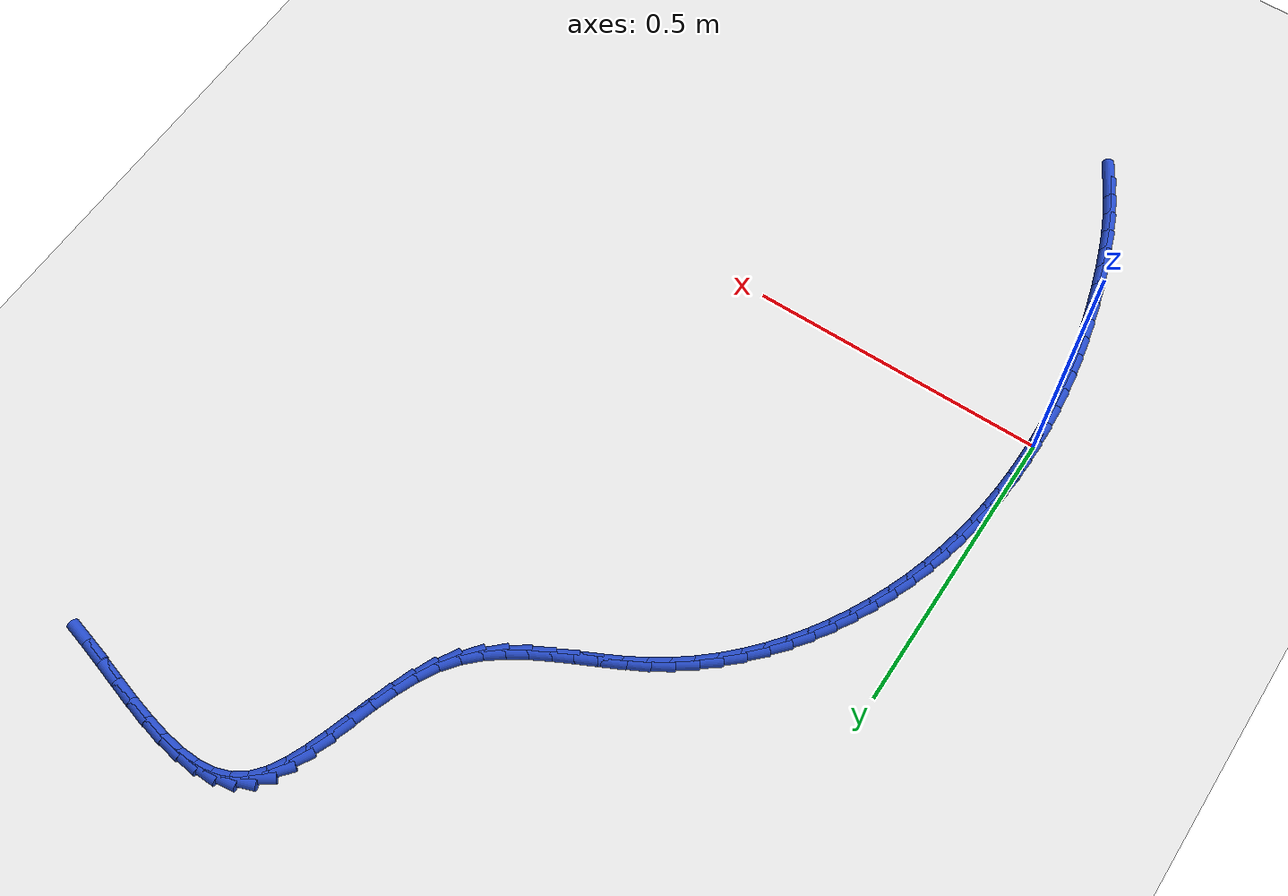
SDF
<sdf version="1.6">
 <world name="default">
  <model name="ground_plane">
   <static>1</static>
   <link name="link">
    <collision name="collision">
     <geometry><plane><normal>0 0 1</normal><size>100 100</size></plane></geometry>
     <surface><friction><ode><mu>100</mu><mu2>50</mu2></ode></friction></surface>
    </collision>
    <visual name="visual">
     <cast_shadows>0</cast_shadows>
     <geometry><plane><normal>0 0 1</normal><size>100 100</size></plane></geometry>
     <material>
      <script><uri>file://media/materials/scripts/gazebo.material</uri><name>Gazebo/WhiteGlow</name></script>
     </material>
    </visual>
   </link>
  </model>
  <model name="line">
   <link name="link_0">
    <pose>-4.336808689942018e-18 -1.1796119636642288e-16 0.01 0 1.57 1.568800639922885</pose>
    <collision name="collision">
     <geometry><cylinder><radius>0.01</radius><length>0.08</length></cylinder></geometry>
    </collision>
    <visual name="visual">
     <material>
      <script><name>Gazebo/Blue</name><uri>file://media/materials/scripts/gazebo.material</uri></script>
     </material>
     <geometry><cylinder><radius>0.01</radius><length>0.08</length></cylinder></geometry>
    </visual>
   </link>
   <link name="link_1">
    <pose>6.942134410869392e-05 0.034785643438998634 0.01 0 1.57 1.5328198648100113</pose>
    <collision name="collision">
     <geometry><cylinder><radius>0.01</radius><length>0.08</length></cylinder></geometry>
    </collision>
    <visual name="visual">
     <material>
      <script><name>Gazebo/Blue</name><uri>file://media/materials/scripts/gazebo.material</uri></script>
     </material>
     <geometry><cylinder><radius>0.01</radius><length>0.08</length></cylinder></geometry>
    </visual>
   </link>
   <link name="link_2">
    <pose>0.0013932022842789277 0.06962681660383616 0.01 0 1.57 1.4957371810992248</pose>
    <collision name="collision">
     <geometry><cylinder><radius>0.01</radius><length>0.08</length></cylinder></geometry>
    </collision>
    <visual name="visual">
     <material>
      <script><name>Gazebo/Blue</name><uri>file://media/materials/scripts/gazebo.material</uri></script>
     </material>
     <geometry><cylinder><radius>0.01</radius><length>0.08</length></cylinder></geometry>
    </visual>
   </link>
   <link name="link_3">
    <pose>0.004012831644318548 0.10446211791155681 0.01 0 1.57 1.4574734331015686</pose>
    <collision name="collision">
     <geometry><cylinder><radius>0.01</radius><length>0.08</length></cylinder></geometry>
    </collision>
    <visual name="visual">
     <material>
      <script><name>Gazebo/Blue</name><uri>file://media/materials/scripts/gazebo.material</uri></script>
     </material>
     <geometry><cylinder><radius>0.01</radius><length>0.08</length></cylinder></geometry>
    </visual>
   </link>
   <link name="link_4">
    <pose>0.007969798248035407 0.13923014577920503 0.01 0 1.57 1.4179591411402652</pose>
    <collision name="collision">
     <geometry><cylinder><radius>0.01</radius><length>0.08</length></cylinder></geometry>
    </collision>
    <visual name="visual">
     <material>
      <script><name>Gazebo/Blue</name><uri>file://media/materials/scripts/gazebo.material</uri></script>
     </material>
     <geometry><cylinder><radius>0.01</radius><length>0.08</length></cylinder></geometry>
    </visual>
   </link>
   <link name="link_5">
    <pose>0.013305590919237355 0.17386949862382514 0.01 0 1.57 1.3771366664826474</pose>
    <collision name="collision">
     <geometry><cylinder><radius>0.01</radius><length>0.08</length></cylinder></geometry>
    </collision>
    <visual name="visual">
     <material>
      <script><name>Gazebo/Blue</name><uri>file://media/materials/scripts/gazebo.material</uri></script>
     </material>
     <geometry><cylinder><radius>0.01</radius><length>0.08</length></cylinder></geometry>
    </visual>
   </link>
   <link name="link_6">
    <pose>0.020061698481732258 0.20831877486246167 0.01 0 1.57 1.3349627168937246</pose>
    <collision name="collision">
     <geometry><cylinder><radius>0.01</radius><length>0.08</length></cylinder></geometry>
    </collision>
    <visual name="visual">
     <material>
      <script><name>Gazebo/Blue</name><uri>file://media/materials/scripts/gazebo.material</uri></script>
     </material>
     <geometry><cylinder><radius>0.01</radius><length>0.08</length></cylinder></geometry>
    </visual>
   </link>
   <link name="link_7">
    <pose>0.02827960975932797 0.24251657291215897 0.01 0 1.57 1.2914111258414969</pose>
    <collision name="collision">
     <geometry><cylinder><radius>0.01</radius><length>0.08</length></cylinder></geometry>
    </collision>
    <visual name="visual">
     <material>
      <script><name>Gazebo/Blue</name><uri>file://media/materials/scripts/gazebo.material</uri></script>
     </material>
     <geometry><cylinder><radius>0.01</radius><length>0.08</length></cylinder></geometry>
    </visual>
   </link>
   <link name="link_8">
    <pose>0.03800081357583232 0.27640149118996127 0.01 0 1.57 1.2464757983543455</pose>
    <collision name="collision">
     <geometry><cylinder><radius>0.01</radius><length>0.08</length></cylinder></geometry>
    </collision>
    <visual name="visual">
     <material>
      <script><name>Gazebo/Blue</name><uri>file://media/materials/scripts/gazebo.material</uri></script>
     </material>
     <geometry><cylinder><radius>0.01</radius><length>0.08</length></cylinder></geometry>
    </visual>
   </link>
   <link name="link_9">
    <pose>0.04926679858608168 0.30991212789948186 0.01 0 1.57 1.2002997846877717</pose>
    <collision name="collision">
     <geometry><cylinder><radius>0.01</radius><length>0.08</length></cylinder></geometry>
    </collision>
    <visual name="visual">
     <material>
      <script><name>Gazebo/Blue</name><uri>file://media/materials/scripts/gazebo.material</uri></script>
     </material>
     <geometry><cylinder><radius>0.01</radius><length>0.08</length></cylinder></geometry>
    </visual>
   </link>
   <link name="link_10">
    <pose>0.06210962696470761 0.3429751744702558 0.01 0 1.57 1.1532583030085948</pose>
    <collision name="collision">
     <geometry><cylinder><radius>0.01</radius><length>0.08</length></cylinder></geometry>
    </collision>
    <visual name="visual">
     <material>
      <script><name>Gazebo/Blue</name><uri>file://media/materials/scripts/gazebo.material</uri></script>
     </material>
     <geometry><cylinder><radius>0.01</radius><length>0.08</length></cylinder></geometry>
    </visual>
   </link>
   <link name="link_11">
    <pose>0.07652657323071264 0.37547338135413766 0.01 0 1.57 1.1052057215503837</pose>
    <collision name="collision">
     <geometry><cylinder><radius>0.01</radius><length>0.08</length></cylinder></geometry>
    </collision>
    <visual name="visual">
     <material>
      <script><name>Gazebo/Blue</name><uri>file://media/materials/scripts/gazebo.material</uri></script>
     </material>
     <geometry><cylinder><radius>0.01</radius><length>0.08</length></cylinder></geometry>
    </visual>
   </link>
   <link name="link_12">
    <pose>0.09250688889635973 0.407279364984069 0.01 0 1.57 1.0558829300887649</pose>
    <collision name="collision">
     <geometry><cylinder><radius>0.01</radius><length>0.08</length></cylinder></geometry>
    </collision>
    <visual name="visual">
     <material>
      <script><name>Gazebo/Blue</name><uri>file://media/materials/scripts/gazebo.material</uri></script>
     </material>
     <geometry><cylinder><radius>0.01</radius><length>0.08</length></cylinder></geometry>
    </visual>
   </link>
   <link name="link_13">
    <pose>0.11003982547391183 0.43826574179299205 0.01 0 1.57 1.0050430744310703</pose>
    <collision name="collision">
     <geometry><cylinder><radius>0.01</radius><length>0.08</length></cylinder></geometry>
    </collision>
    <visual name="visual">
     <material>
      <script><name>Gazebo/Blue</name><uri>file://media/materials/scripts/gazebo.material</uri></script>
     </material>
     <geometry><cylinder><radius>0.01</radius><length>0.08</length></cylinder></geometry>
    </visual>
   </link>
   <link name="link_14">
    <pose>0.12911463447563182 0.4683051282138483 0.01 0 1.57 0.9524551473889792</pose>
    <collision name="collision">
     <geometry><cylinder><radius>0.01</radius><length>0.08</length></cylinder></geometry>
    </collision>
    <visual name="visual">
     <material>
      <script><name>Gazebo/Blue</name><uri>file://media/materials/scripts/gazebo.material</uri></script>
     </material>
     <geometry><cylinder><radius>0.01</radius><length>0.08</length></cylinder></geometry>
    </visual>
   </link>
   <link name="link_15">
    <pose>0.1497205674137826 0.49727014067957964 0.01 0 1.57 0.8979094869843361</pose>
    <collision name="collision">
     <geometry><cylinder><radius>0.01</radius><length>0.08</length></cylinder></geometry>
    </collision>
    <visual name="visual">
     <material>
      <script><name>Gazebo/Blue</name><uri>file://media/materials/scripts/gazebo.material</uri></script>
     </material>
     <geometry><cylinder><radius>0.01</radius><length>0.08</length></cylinder></geometry>
    </visual>
   </link>
   <link name="link_16">
    <pose>0.1718468758006272 0.525033395623128 0.01 0 1.57 0.8412253683001695</pose>
    <collision name="collision">
     <geometry><cylinder><radius>0.01</radius><length>0.08</length></cylinder></geometry>
    </collision>
    <visual name="visual">
     <material>
      <script><name>Gazebo/Blue</name><uri>file://media/materials/scripts/gazebo.material</uri></script>
     </material>
     <geometry><cylinder><radius>0.01</radius><length>0.08</length></cylinder></geometry>
    </visual>
   </link>
   <link name="link_17">
    <pose>0.19548281114842855 0.5514675094774353 0.01 0 1.57 0.7822607343846165</pose>
    <collision name="collision">
     <geometry><cylinder><radius>0.01</radius><length>0.08</length></cylinder></geometry>
    </collision>
    <visual name="visual">
     <material>
      <script><name>Gazebo/Blue</name><uri>file://media/materials/scripts/gazebo.material</uri></script>
     </material>
     <geometry><cylinder><radius>0.01</radius><length>0.08</length></cylinder></geometry>
    </visual>
   </link>
   <link name="link_18">
    <pose>0.2206176249694495 0.5764450986754431 0.01 0 1.57 0.7209238612460389</pose>
    <collision name="collision">
     <geometry><cylinder><radius>0.01</radius><length>0.08</length></cylinder></geometry>
    </collision>
    <visual name="visual">
     <material>
      <script><name>Gazebo/Blue</name><uri>file://media/materials/scripts/gazebo.material</uri></script>
     </material>
     <geometry><cylinder><radius>0.01</radius><length>0.08</length></cylinder></geometry>
    </visual>
   </link>
   <link name="link_19">
    <pose>0.24724056877595305 0.5998387796500934 0.01 0 1.57 0.6571863731728453</pose>
    <collision name="collision">
     <geometry><cylinder><radius>0.01</radius><length>0.08</length></cylinder></geometry>
    </collision>
    <visual name="visual">
     <material>
      <script><name>Gazebo/Blue</name><uri>file://media/materials/scripts/gazebo.material</uri></script>
     </material>
     <geometry><cylinder><radius>0.01</radius><length>0.08</length></cylinder></geometry>
    </visual>
   </link>
   <link name="link_20">
    <pose>0.2753408940802021 0.6215211688343278 0.01 0 1.57 0.5910965270302646</pose>
    <collision name="collision">
     <geometry><cylinder><radius>0.01</radius><length>0.08</length></cylinder></geometry>
    </collision>
    <visual name="visual">
     <material>
      <script><name>Gazebo/Blue</name><uri>file://media/materials/scripts/gazebo.material</uri></script>
     </material>
     <geometry><cylinder><radius>0.01</radius><length>0.08</length></cylinder></geometry>
    </visual>
   </link>
   <link name="link_21">
    <pose>0.3049078523944595 0.6413648826610885 0.01 0 1.57 0.5262979814604454</pose>
    <collision name="collision">
     <geometry><cylinder><radius>0.01</radius><length>0.08</length></cylinder></geometry>
    </collision>
    <visual name="visual">
     <material>
      <script><name>Gazebo/Blue</name><uri>file://media/materials/scripts/gazebo.material</uri></script>
     </material>
     <geometry><cylinder><radius>0.01</radius><length>0.08</length></cylinder></geometry>
    </visual>
   </link>
   <link name="link_22">
    <pose>0.33585827709112476 0.6593456815773934 0.01 0 1.57 0.48171743994191635</pose>
    <collision name="collision">
     <geometry><cylinder><radius>0.01</radius><length>0.08</length></cylinder></geometry>
    </collision>
    <visual name="visual">
     <material>
      <script><name>Gazebo/Blue</name><uri>file://media/materials/scripts/gazebo.material</uri></script>
     </material>
     <geometry><cylinder><radius>0.01</radius><length>0.08</length></cylinder></geometry>
    </visual>
   </link>
   <link name="link_23">
    <pose>0.3677151314851315 0.676000308939072 0.01 0 1.57 0.4631127114034183</pose>
    <collision name="collision">
     <geometry><cylinder><radius>0.01</radius><length>0.08</length></cylinder></geometry>
    </collision>
    <visual name="visual">
     <material>
      <script><name>Gazebo/Blue</name><uri>file://media/materials/scripts/gazebo.material</uri></script>
     </material>
     <geometry><cylinder><radius>0.01</radius><length>0.08</length></cylinder></geometry>
    </visual>
   </link>
   <link name="link_24">
    <pose>0.39986811786411736 0.6920553096806908 0.01 0 1.57 0.4702268618535628</pose>
    <collision name="collision">
     <geometry><cylinder><radius>0.01</radius><length>0.08</length></cylinder></geometry>
    </collision>
    <visual name="visual">
     <material>
      <script><name>Gazebo/Blue</name><uri>file://media/materials/scripts/gazebo.material</uri></script>
     </material>
     <geometry><cylinder><radius>0.01</radius><length>0.08</length></cylinder></geometry>
    </visual>
   </link>
   <link name="link_25">
    <pose>0.4317068330319789 0.7082373789756444 0.01 0 1.57 0.5036651452503476</pose>
    <collision name="collision">
     <geometry><cylinder><radius>0.01</radius><length>0.08</length></cylinder></geometry>
    </collision>
    <visual name="visual">
     <material>
      <script><name>Gazebo/Blue</name><uri>file://media/materials/scripts/gazebo.material</uri></script>
     </material>
     <geometry><cylinder><radius>0.01</radius><length>0.08</length></cylinder></geometry>
    </visual>
   </link>
   <link name="link_26">
    <pose>0.46262087379261235 0.725273211997327 0.01 0 1.57 0.564802947789508</pose>
    <collision name="collision">
     <geometry><cylinder><radius>0.01</radius><length>0.08</length></cylinder></geometry>
    </collision>
    <visual name="visual">
     <material>
      <script><name>Gazebo/Blue</name><uri>file://media/materials/scripts/gazebo.material</uri></script>
     </material>
     <geometry><cylinder><radius>0.01</radius><length>0.08</length></cylinder></geometry>
    </visual>
   </link>
   <link name="link_27">
    <pose>0.49199983694991395 0.7438895039191332 0.01 0 1.57 0.6551097158264244</pose>
    <collision name="collision">
     <geometry><cylinder><radius>0.01</radius><length>0.08</length></cylinder></geometry>
    </collision>
    <visual name="visual">
     <material>
      <script><name>Gazebo/Blue</name><uri>file://media/materials/scripts/gazebo.material</uri></script>
     </material>
     <geometry><cylinder><radius>0.01</radius><length>0.08</length></cylinder></geometry>
    </visual>
   </link>
   <link name="link_28">
    <pose>0.5192333193077802 0.7648129499144577 0.01 0 1.57 0.7746562567084156</pose>
    <collision name="collision">
     <geometry><cylinder><radius>0.01</radius><length>0.08</length></cylinder></geometry>
    </collision>
    <visual name="visual">
     <material>
      <script><name>Gazebo/Blue</name><uri>file://media/materials/scripts/gazebo.material</uri></script>
     </material>
     <geometry><cylinder><radius>0.01</radius><length>0.08</length></cylinder></geometry>
    </visual>
   </link>
   <link name="link_29">
    <pose>0.5437109176701073 0.7887702451566949 0.01 0 1.57 0.9197677555701234</pose>
    <collision name="collision">
     <geometry><cylinder><radius>0.01</radius><length>0.08</length></cylinder></geometry>
    </collision>
    <visual name="visual">
     <material>
      <script><name>Gazebo/Blue</name><uri>file://media/materials/scripts/gazebo.material</uri></script>
     </material>
     <geometry><cylinder><radius>0.01</radius><length>0.08</length></cylinder></geometry>
    </visual>
   </link>
   <link name="link_30">
    <pose>0.5648246873275268 0.8164848359482298 0.01 0 1.57 1.0639257600568524</pose>
    <collision name="collision">
     <geometry><cylinder><radius>0.01</radius><length>0.08</length></cylinder></geometry>
    </collision>
    <visual name="visual">
     <material>
      <script><name>Gazebo/Blue</name><uri>file://media/materials/scripts/gazebo.material</uri></script>
     </material>
     <geometry><cylinder><radius>0.01</radius><length>0.08</length></cylinder></geometry>
    </visual>
   </link>
   <link name="link_31">
    <pose>0.5823904411315697 0.848120176286004 0.01 0 1.57 1.1674382508379675</pose>
    <collision name="collision">
     <geometry><cylinder><radius>0.01</radius><length>0.08</length></cylinder></geometry>
    </collision>
    <visual name="visual">
     <material>
      <script><name>Gazebo/Blue</name><uri>file://media/materials/scripts/gazebo.material</uri></script>
     </material>
     <geometry><cylinder><radius>0.01</radius><length>0.08</length></cylinder></geometry>
    </visual>
   </link>
   <link name="link_32">
    <pose>0.5971255657062029 0.8826482974716736 0.01 0 1.57 1.2328137088379727</pose>
    <collision name="collision">
     <geometry><cylinder><radius>0.01</radius><length>0.08</length></cylinder></geometry>
    </collision>
    <visual name="visual">
     <material>
      <script><name>Gazebo/Blue</name><uri>file://media/materials/scripts/gazebo.material</uri></script>
     </material>
     <geometry><cylinder><radius>0.01</radius><length>0.08</length></cylinder></geometry>
    </visual>
   </link>
   <link name="link_33">
    <pose>0.6098629126268238 0.918888644775836 0.01 0 1.57 1.2659018494557777</pose>
    <collision name="collision">
     <geometry><cylinder><radius>0.01</radius><length>0.08</length></cylinder></geometry>
    </collision>
    <visual name="visual">
     <material>
      <script><name>Gazebo/Blue</name><uri>file://media/materials/scripts/gazebo.material</uri></script>
     </material>
     <geometry><cylinder><radius>0.01</radius><length>0.08</length></cylinder></geometry>
    </visual>
   </link>
   <link name="link_34">
    <pose>0.6214353334688297 0.9556606634690878 0.01 0 1.57 1.2691258530796752</pose>
    <collision name="collision">
     <geometry><cylinder><radius>0.01</radius><length>0.08</length></cylinder></geometry>
    </collision>
    <visual name="visual">
     <material>
      <script><name>Gazebo/Blue</name><uri>file://media/materials/scripts/gazebo.material</uri></script>
     </material>
     <geometry><cylinder><radius>0.01</radius><length>0.08</length></cylinder></geometry>
    </visual>
   </link>
   <link name="link_35">
    <pose>0.6326756798076177 0.9917837988220257 0.01 0 1.57 1.2409351931149395</pose>
    <collision name="collision">
     <geometry><cylinder><radius>0.01</radius><length>0.08</length></cylinder></geometry>
    </collision>
    <visual name="visual">
     <material>
      <script><name>Gazebo/Blue</name><uri>file://media/materials/scripts/gazebo.material</uri></script>
     </material>
     <geometry><cylinder><radius>0.01</radius><length>0.08</length></cylinder></geometry>
    </visual>
   </link>
   <link name="link_36">
    <pose>0.6444168032185855 1.0260774961052466 0.01 0 1.57 1.1749196223753062</pose>
    <collision name="collision">
     <geometry><cylinder><radius>0.01</radius><length>0.08</length></cylinder></geometry>
    </collision>
    <visual name="visual">
     <material>
      <script><name>Gazebo/Blue</name><uri>file://media/materials/scripts/gazebo.material</uri></script>
     </material>
     <geometry><cylinder><radius>0.01</radius><length>0.08</length></cylinder></geometry>
    </visual>
   </link>
   <link name="link_37">
    <pose>0.6574915552771301 1.057361200589347 0.01 0 1.57 1.058369534545176</pose>
    <collision name="collision">
     <geometry><cylinder><radius>0.01</radius><length>0.08</length></cylinder></geometry>
    </collision>
    <visual name="visual">
     <material>
      <script><name>Gazebo/Blue</name><uri>file://media/materials/scripts/gazebo.material</uri></script>
     </material>
     <geometry><cylinder><radius>0.01</radius><length>0.08</length></cylinder></geometry>
    </visual>
   </link>
   <link name="link_38">
    <pose>0.6727327875586487 1.0844543575449235 0.01 0 1.57 0.8722974416425814</pose>
    <collision name="collision">
     <geometry><cylinder><radius>0.01</radius><length>0.08</length></cylinder></geometry>
    </collision>
    <visual name="visual">
     <material>
      <script><name>Gazebo/Blue</name><uri>file://media/materials/scripts/gazebo.material</uri></script>
     </material>
     <geometry><cylinder><radius>0.01</radius><length>0.08</length></cylinder></geometry>
    </visual>
   </link>
   <link name="link_39">
    <pose>0.690973351638539 1.1061764122425735 0.01 0 1.57 0.6093214626110365</pose>
    <collision name="collision">
     <geometry><cylinder><radius>0.01</radius><length>0.08</length></cylinder></geometry>
    </collision>
    <visual name="visual">
     <material>
      <script><name>Gazebo/Blue</name><uri>file://media/materials/scripts/gazebo.material</uri></script>
     </material>
     <geometry><cylinder><radius>0.01</radius><length>0.08</length></cylinder></geometry>
    </visual>
   </link>
   <link name="link_40">
    <pose>0.712942071337157 1.12150858704878 0.01 0 1.57 0.3432235566435931</pose>
    <collision name="collision">
     <geometry><cylinder><radius>0.01</radius><length>0.08</length></cylinder></geometry>
    </collision>
    <visual name="visual">
     <material>
      <script><name>Gazebo/Blue</name><uri>file://media/materials/scripts/gazebo.material</uri></script>
     </material>
     <geometry><cylinder><radius>0.01</radius><length>0.08</length></cylinder></geometry>
    </visual>
   </link>
   <link name="link_41">
    <pose>0.7385729055669421 1.130668225751413 0.01 0 1.57 0.130055325957764</pose>
    <collision name="collision">
     <geometry><cylinder><radius>0.01</radius><length>0.08</length></cylinder></geometry>
    </collision>
    <visual name="visual">
     <material>
      <script><name>Gazebo/Blue</name><uri>file://media/materials/scripts/gazebo.material</uri></script>
     </material>
     <geometry><cylinder><radius>0.01</radius><length>0.08</length></cylinder></geometry>
    </visual>
   </link>
   <link name="link_42">
    <pose>0.7674331036576405 1.1344429546682164 0.01 0 1.57 -0.02588274738965222</pose>
    <collision name="collision">
     <geometry><cylinder><radius>0.01</radius><length>0.08</length></cylinder></geometry>
    </collision>
    <visual name="visual">
     <material>
      <script><name>Gazebo/Blue</name><uri>file://media/materials/scripts/gazebo.material</uri></script>
     </material>
     <geometry><cylinder><radius>0.01</radius><length>0.08</length></cylinder></geometry>
    </visual>
   </link>
   <link name="link_43">
    <pose>0.7990879490780592 1.1336234572940662 0.01 0 1.57 -0.13508498575308453</pose>
    <collision name="collision">
     <geometry><cylinder><radius>0.01</radius><length>0.08</length></cylinder></geometry>
    </collision>
    <visual name="visual">
     <material>
      <script><name>Gazebo/Blue</name><uri>file://media/materials/scripts/gazebo.material</uri></script>
     </material>
     <geometry><cylinder><radius>0.01</radius><length>0.08</length></cylinder></geometry>
    </visual>
   </link>
   <link name="link_44">
    <pose>0.8331027252970042 1.1290004171238368 0.01 0 1.57 -0.20934949271723952</pose>
    <collision name="collision">
     <geometry><cylinder><radius>0.01</radius><length>0.08</length></cylinder></geometry>
    </collision>
    <visual name="visual">
     <material>
      <script><name>Gazebo/Blue</name><uri>file://media/materials/scripts/gazebo.material</uri></script>
     </material>
     <geometry><cylinder><radius>0.01</radius><length>0.08</length></cylinder></geometry>
    </visual>
   </link>
   <link name="link_45">
    <pose>0.8690427157832831 1.121364517652404 0.01 0 1.57 -0.25752226222784425</pose>
    <collision name="collision">
     <geometry><cylinder><radius>0.01</radius><length>0.08</length></cylinder></geometry>
    </collision>
    <visual name="visual">
     <material>
      <script><name>Gazebo/Blue</name><uri>file://media/materials/scripts/gazebo.material</uri></script>
     </material>
     <geometry><cylinder><radius>0.01</radius><length>0.08</length></cylinder></geometry>
    </visual>
   </link>
   <link name="link_46">
    <pose>0.9064732040057021 1.1115064423746435 0.01 0 1.57 -0.2853356858239661</pose>
    <collision name="collision">
     <geometry><cylinder><radius>0.01</radius><length>0.08</length></cylinder></geometry>
    </collision>
    <visual name="visual">
     <material>
      <script><name>Gazebo/Blue</name><uri>file://media/materials/scripts/gazebo.material</uri></script>
     </material>
     <geometry><cylinder><radius>0.01</radius><length>0.08</length></cylinder></geometry>
    </visual>
   </link>
   <link name="link_47">
    <pose>0.9449594734330677 1.1002168747854297 0.01 0 1.57 -0.2960993629154483</pose>
    <collision name="collision">
     <geometry><cylinder><radius>0.01</radius><length>0.08</length></cylinder></geometry>
    </collision>
    <visual name="visual">
     <material>
      <script><name>Gazebo/Blue</name><uri>file://media/materials/scripts/gazebo.material</uri></script>
     </material>
     <geometry><cylinder><radius>0.01</radius><length>0.08</length></cylinder></geometry>
    </visual>
   </link>
   <link name="link_48">
    <pose>0.9840668075341867 1.0882864983796383 0.01 0 1.57 -0.29127927100680845</pose>
    <collision name="collision">
     <geometry><cylinder><radius>0.01</radius><length>0.08</length></cylinder></geometry>
    </collision>
    <visual name="visual">
     <material>
      <script><name>Gazebo/Blue</name><uri>file://media/materials/scripts/gazebo.material</uri></script>
     </material>
     <geometry><cylinder><radius>0.01</radius><length>0.08</length></cylinder></geometry>
    </visual>
   </link>
   <link name="link_49">
    <pose>1.023360489777866 1.0765059966521442 0.01 0 1.57 -0.27080473262009763</pose>
    <collision name="collision">
     <geometry><cylinder><radius>0.01</radius><length>0.08</length></cylinder></geometry>
    </collision>
    <visual name="visual">
     <material>
      <script><name>Gazebo/Blue</name><uri>file://media/materials/scripts/gazebo.material</uri></script>
     </material>
     <geometry><cylinder><radius>0.01</radius><length>0.08</length></cylinder></geometry>
    </visual>
   </link>
   <link name="link_185">
    <pose>0.1296270848866814 -0.5073611718584293 0.01 0 1.57 -1.0632821911969872</pose>
    <collision name="collision">
     <geometry><cylinder><radius>0.01</radius><length>0.08</length></cylinder></geometry>
    </collision>
    <visual name="visual">
     <material>
      <script><name>Gazebo/Blue</name><uri>file://media/materials/scripts/gazebo.material</uri></script>
     </material>
     <geometry><cylinder><radius>0.01</radius><length>0.08</length></cylinder></geometry>
    </visual>
   </link>
   <link name="link_186">
    <pose>0.11260205914392468 -0.4767461058933643 0.01 0 1.57 -1.1216484204073323</pose>
    <collision name="collision">
     <geometry><cylinder><radius>0.01</radius><length>0.08</length></cylinder></geometry>
    </collision>
    <visual name="visual">
     <material>
      <script><name>Gazebo/Blue</name><uri>file://media/materials/scripts/gazebo.material</uri></script>
     </material>
     <geometry><cylinder><radius>0.01</radius><length>0.08</length></cylinder></geometry>
    </visual>
   </link>
   <link name="link_187">
    <pose>0.09723912043734695 -0.4448730915870328 0.01 0 1.57 -1.1717786785423459</pose>
    <collision name="collision">
     <geometry><cylinder><radius>0.01</radius><length>0.08</length></cylinder></geometry>
    </collision>
    <visual name="visual">
     <material>
      <script><name>Gazebo/Blue</name><uri>file://media/materials/scripts/gazebo.material</uri></script>
     </material>
     <geometry><cylinder><radius>0.01</radius><length>0.08</length></cylinder></geometry>
    </visual>
   </link>
   <link name="link_188">
    <pose>0.08337826031248681 -0.4119990760595673 0.01 0 1.57 -1.214322183565747</pose>
    <collision name="collision">
     <geometry><cylinder><radius>0.01</radius><length>0.08</length></cylinder></geometry>
    </collision>
    <visual name="visual">
     <material>
      <script><name>Gazebo/Blue</name><uri>file://media/materials/scripts/gazebo.material</uri></script>
     </material>
     <geometry><cylinder><radius>0.01</radius><length>0.08</length></cylinder></geometry>
    </visual>
   </link>
   <link name="link_189">
    <pose>0.07085947031488296 -0.37838100643110056 0.01 0 1.57 -1.2498815816846978</pose>
    <collision name="collision">
     <geometry><cylinder><radius>0.01</radius><length>0.08</length></cylinder></geometry>
    </collision>
    <visual name="visual">
     <material>
      <script><name>Gazebo/Blue</name><uri>file://media/materials/scripts/gazebo.material</uri></script>
     </material>
     <geometry><cylinder><radius>0.01</radius><length>0.08</length></cylinder></geometry>
    </visual>
   </link>
   <link name="link_190">
    <pose>0.059522741990074034 -0.34427582982176475 0.01 0 1.57 -1.2789635167431677</pose>
    <collision name="collision">
     <geometry><cylinder><radius>0.01</radius><length>0.08</length></cylinder></geometry>
    </collision>
    <visual name="visual">
     <material>
      <script><name>Gazebo/Blue</name><uri>file://media/materials/scripts/gazebo.material</uri></script>
     </material>
     <geometry><cylinder><radius>0.01</radius><length>0.08</length></cylinder></geometry>
    </visual>
   </link>
   <link name="link_191">
    <pose>0.04920806688359866 -0.3099404933516923 0.01 0 1.57 -1.3030915932505909</pose>
    <collision name="collision">
     <geometry><cylinder><radius>0.01</radius><length>0.08</length></cylinder></geometry>
    </collision>
    <visual name="visual">
     <material>
      <script><name>Gazebo/Blue</name><uri>file://media/materials/scripts/gazebo.material</uri></script>
     </material>
     <geometry><cylinder><radius>0.01</radius><length>0.08</length></cylinder></geometry>
    </visual>
   </link>
   <link name="link_192">
    <pose>0.03978609034708661 -0.2755899020964245 0.01 0 1.57 -1.3273970155661516</pose>
    <collision name="collision">
     <geometry><cylinder><radius>0.01</radius><length>0.08</length></cylinder></geometry>
    </collision>
    <visual name="visual">
     <material>
      <script><name>Gazebo/Blue</name><uri>file://media/materials/scripts/gazebo.material</uri></script>
     </material>
     <geometry><cylinder><radius>0.01</radius><length>0.08</length></cylinder></geometry>
    </visual>
   </link>
   <link name="link_193">
    <pose>0.03126037224721253 -0.2412566673585218 0.01 0 1.57 -1.353226709728084</pose>
    <collision name="collision">
     <geometry><cylinder><radius>0.01</radius><length>0.08</length></cylinder></geometry>
    </collision>
    <visual name="visual">
     <material>
      <script><name>Gazebo/Blue</name><uri>file://media/materials/scripts/gazebo.material</uri></script>
     </material>
     <geometry><cylinder><radius>0.01</radius><length>0.08</length></cylinder></geometry>
    </visual>
   </link>
   <link name="link_194">
    <pose>0.023670488561032276 -0.2069240039344768 0.01 0 1.57 -1.3805576479041692</pose>
    <collision name="collision">
     <geometry><cylinder><radius>0.01</radius><length>0.08</length></cylinder></geometry>
    </collision>
    <visual name="visual">
     <material>
      <script><name>Gazebo/Blue</name><uri>file://media/materials/scripts/gazebo.material</uri></script>
     </material>
     <geometry><cylinder><radius>0.01</radius><length>0.08</length></cylinder></geometry>
    </visual>
   </link>
   <link name="link_195">
    <pose>0.017056015911197257 -0.172575125735339 0.01 0 1.57 -1.4093522258777957</pose>
    <collision name="collision">
     <geometry><cylinder><radius>0.01</radius><length>0.08</length></cylinder></geometry>
    </collision>
    <visual name="visual">
     <material>
      <script><name>Gazebo/Blue</name><uri>file://media/materials/scripts/gazebo.material</uri></script>
     </material>
     <geometry><cylinder><radius>0.01</radius><length>0.08</length></cylinder></geometry>
    </visual>
   </link>
   <link name="link_196">
    <pose>0.01145653092035888 -0.13819324667215824 0.01 0 1.57 -1.439556756329273</pose>
    <collision name="collision">
     <geometry><cylinder><radius>0.01</radius><length>0.08</length></cylinder></geometry>
    </collision>
    <visual name="visual">
     <material>
      <script><name>Gazebo/Blue</name><uri>file://media/materials/scripts/gazebo.material</uri></script>
     </material>
     <geometry><cylinder><radius>0.01</radius><length>0.08</length></cylinder></geometry>
    </visual>
   </link>
   <link name="link_197">
    <pose>0.006911610211168564 -0.10376158065598426 0.01 0 1.57 -1.4711002400879334</pose>
    <collision name="collision">
     <geometry><cylinder><radius>0.01</radius><length>0.08</length></cylinder></geometry>
    </collision>
    <visual name="visual">
     <material>
      <script><name>Gazebo/Blue</name><uri>file://media/materials/scripts/gazebo.material</uri></script>
     </material>
     <geometry><cylinder><radius>0.01</radius><length>0.08</length></cylinder></geometry>
    </visual>
   </link>
   <link name="link_198">
    <pose>0.0034608304062776997 -0.0692633415978667 0.01 0 1.57 -1.5038935713807289</pose>
    <collision name="collision">
     <geometry><cylinder><radius>0.01</radius><length>0.08</length></cylinder></geometry>
    </collision>
    <visual name="visual">
     <material>
      <script><name>Gazebo/Blue</name><uri>file://media/materials/scripts/gazebo.material</uri></script>
     </material>
     <geometry><cylinder><radius>0.01</radius><length>0.08</length></cylinder></geometry>
    </visual>
   </link>
   <link name="link_199">
    <pose>0.0011437681283377045 -0.03468174340885538 0.01 0 1.57 -1.5378293064680213</pose>
    <collision name="collision">
     <geometry><cylinder><radius>0.01</radius><length>0.08</length></cylinder></geometry>
    </collision>
    <visual name="visual">
     <material>
      <script><name>Gazebo/Blue</name><uri>file://media/materials/scripts/gazebo.material</uri></script>
     </material>
     <geometry><cylinder><radius>0.01</radius><length>0.08</length></cylinder></geometry>
    </visual>
   </link>
   <link name="link_200">
    <pose>-1.6479873021779667e-17 2.0816681711721685e-17 0.01 0 1.57 1.5688105456223318</pose>
    <collision name="collision">
     <geometry><cylinder><radius>0.01</radius><length>0.08</length></cylinder></geometry>
    </collision>
    <visual name="visual">
     <material>
      <script><name>Gazebo/Blue</name><uri>file://media/materials/scripts/gazebo.material</uri></script>
     </material>
     <geometry><cylinder><radius>0.01</radius><length>0.08</length></cylinder></geometry>
    </visual>
   </link>
   <link name="link_201">
    <pose>6.910264391596019e-05 0.03479867471765057 0.01 0 1.57 1.5688105456223322</pose>
    <collision name="collision">
     <geometry><cylinder><radius>0.01</radius><length>0.08</length></cylinder></geometry>
    </collision>
    <visual name="visual">
     <material>
      <script><name>Gazebo/Blue</name><uri>file://media/materials/scripts/gazebo.material</uri></script>
     </material>
     <geometry><cylinder><radius>0.01</radius><length>0.08</length></cylinder></geometry>
    </visual>
   </link>
  </model>
 </world>
</sdf>
